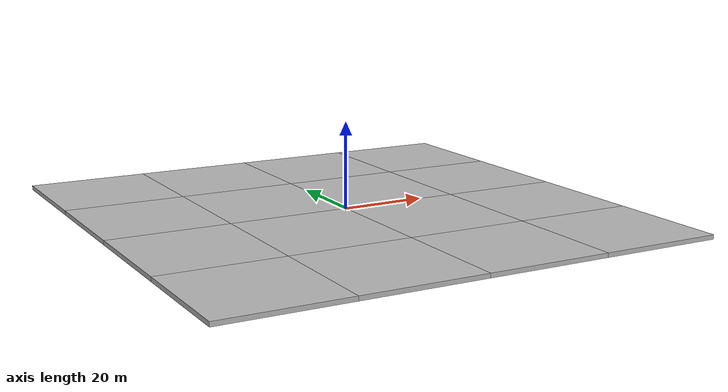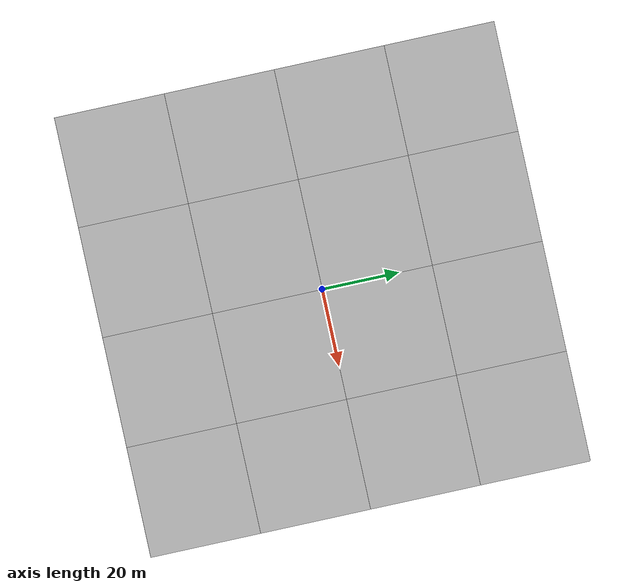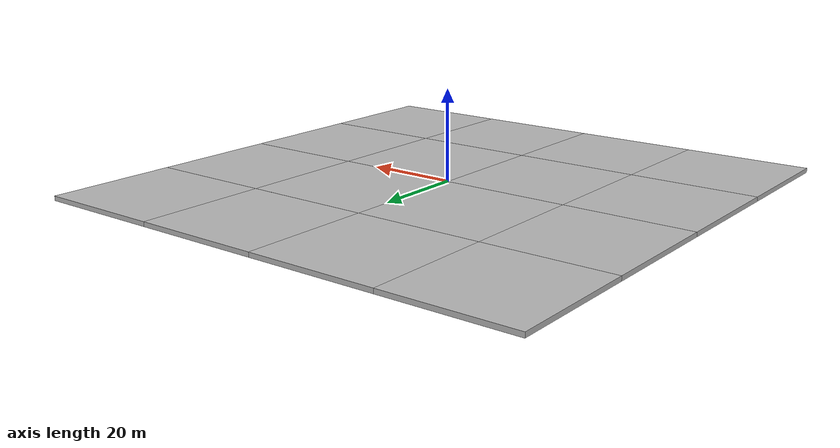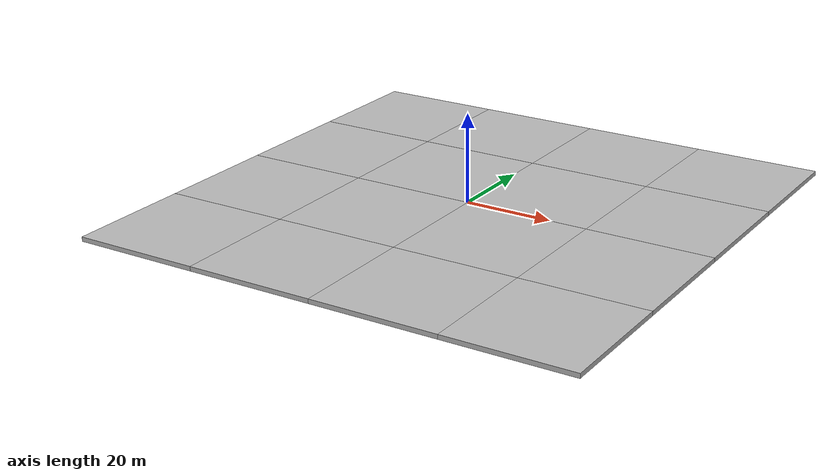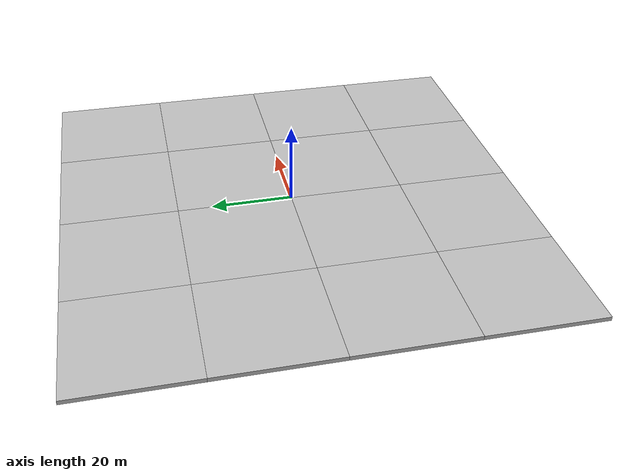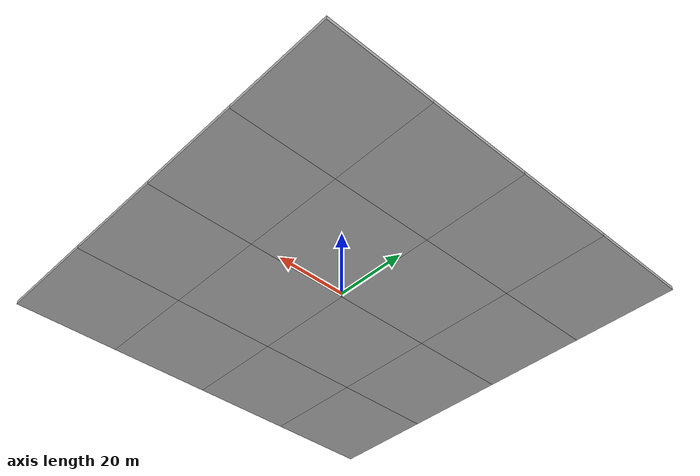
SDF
<sdf version='1.6'>
<model name='riseholme_satellite'>
  <static>true</static>
  <link name='link'>
    <collision name='collision'>
      <pose>0 0 -0.5 0 0 0</pose>
      <geometry>
        <box>
          <size>114.286 114.286 1</size>
        </box>
      </geometry>
    </collision>
    <visual name='visual0_0'>
      <pose>-42.8571 42.8571 -0.5 0 0 1.5708</pose>
      <geometry>
        <box>
          <size>28.5714 28.5714 1</size>
        </box>
      </geometry>
      <material>
        <script>
          <uri>model://riseholme_satellite/materials/scripts</uri>
          <uri>model://riseholme_satellite/materials/textures</uri>
          <name>riseholme_satellite/0_0</name>
        </script>
      </material>
    </visual>
    <visual name='visual0_1'>
      <pose>-14.2857 42.8571 -0.5 0 0 1.5708</pose>
      <geometry>
        <box>
          <size>28.5714 28.5714 1</size>
        </box>
      </geometry>
      <material>
        <script>
          <uri>model://riseholme_satellite/materials/scripts</uri>
          <uri>model://riseholme_satellite/materials/textures</uri>
          <name>riseholme_satellite/0_1</name>
        </script>
      </material>
    </visual>
    <visual name='visual0_2'>
      <pose>14.2857 42.8571 -0.5 0 0 1.5708</pose>
      <geometry>
        <box>
          <size>28.5714 28.5714 1</size>
        </box>
      </geometry>
      <material>
        <script>
          <uri>model://riseholme_satellite/materials/scripts</uri>
          <uri>model://riseholme_satellite/materials/textures</uri>
          <name>riseholme_satellite/0_2</name>
        </script>
      </material>
    </visual>
    <visual name='visual0_3'>
      <pose>42.8571 42.8571 -0.5 0 0 1.5708</pose>
      <geometry>
        <box>
          <size>28.5714 28.5714 1</size>
        </box>
      </geometry>
      <material>
        <script>
          <uri>model://riseholme_satellite/materials/scripts</uri>
          <uri>model://riseholme_satellite/materials/textures</uri>
          <name>riseholme_satellite/0_3</name>
        </script>
      </material>
    </visual>
    <visual name='visual1_0'>
      <pose>-42.8571 14.2857 -0.5 0 0 1.5708</pose>
      <geometry>
        <box>
          <size>28.5714 28.5714 1</size>
        </box>
      </geometry>
      <material>
        <script>
          <uri>model://riseholme_satellite/materials/scripts</uri>
          <uri>model://riseholme_satellite/materials/textures</uri>
          <name>riseholme_satellite/1_0</name>
        </script>
      </material>
    </visual>
    <visual name='visual1_1'>
      <pose>-14.2857 14.2857 -0.5 0 0 1.5708</pose>
      <geometry>
        <box>
          <size>28.5714 28.5714 1</size>
        </box>
      </geometry>
      <material>
        <script>
          <uri>model://riseholme_satellite/materials/scripts</uri>
          <uri>model://riseholme_satellite/materials/textures</uri>
          <name>riseholme_satellite/1_1</name>
        </script>
      </material>
    </visual>
    <visual name='visual1_2'>
      <pose>14.2857 14.2857 -0.5 0 0 1.5708</pose>
      <geometry>
        <box>
          <size>28.5714 28.5714 1</size>
        </box>
      </geometry>
      <material>
        <script>
          <uri>model://riseholme_satellite/materials/scripts</uri>
          <uri>model://riseholme_satellite/materials/textures</uri>
          <name>riseholme_satellite/1_2</name>
        </script>
      </material>
    </visual>
    <visual name='visual1_3'>
      <pose>42.8571 14.2857 -0.5 0 0 1.5708</pose>
      <geometry>
        <box>
          <size>28.5714 28.5714 1</size>
        </box>
      </geometry>
      <material>
        <script>
          <uri>model://riseholme_satellite/materials/scripts</uri>
          <uri>model://riseholme_satellite/materials/textures</uri>
          <name>riseholme_satellite/1_3</name>
        </script>
      </material>
    </visual>
    <visual name='visual2_0'>
      <pose>-42.8571 -14.2857 -0.5 0 0 1.5708</pose>
      <geometry>
        <box>
          <size>28.5714 28.5714 1</size>
        </box>
      </geometry>
      <material>
        <script>
          <uri>model://riseholme_satellite/materials/scripts</uri>
          <uri>model://riseholme_satellite/materials/textures</uri>
          <name>riseholme_satellite/2_0</name>
        </script>
      </material>
    </visual>
    <visual name='visual2_1'>
      <pose>-14.2857 -14.2857 -0.5 0 0 1.5708</pose>
      <geometry>
        <box>
          <size>28.5714 28.5714 1</size>
        </box>
      </geometry>
      <material>
        <script>
          <uri>model://riseholme_satellite/materials/scripts</uri>
          <uri>model://riseholme_satellite/materials/textures</uri>
          <name>riseholme_satellite/2_1</name>
        </script>
      </material>
    </visual>
    <visual name='visual2_2'>
      <pose>14.2857 -14.2857 -0.5 0 0 1.5708</pose>
      <geometry>
        <box>
          <size>28.5714 28.5714 1</size>
        </box>
      </geometry>
      <material>
        <script>
          <uri>model://riseholme_satellite/materials/scripts</uri>
          <uri>model://riseholme_satellite/materials/textures</uri>
          <name>riseholme_satellite/2_2</name>
        </script>
      </material>
    </visual>
    <visual name='visual2_3'>
      <pose>42.8571 -14.2857 -0.5 0 0 1.5708</pose>
      <geometry>
        <box>
          <size>28.5714 28.5714 1</size>
        </box>
      </geometry>
      <material>
        <script>
          <uri>model://riseholme_satellite/materials/scripts</uri>
          <uri>model://riseholme_satellite/materials/textures</uri>
          <name>riseholme_satellite/2_3</name>
        </script>
      </material>
    </visual>
    <visual name='visual3_0'>
      <pose>-42.8571 -42.8571 -0.5 0 0 1.5708</pose>
      <geometry>
        <box>
          <size>28.5714 28.5714 1</size>
        </box>
      </geometry>
      <material>
        <script>
          <uri>model://riseholme_satellite/materials/scripts</uri>
          <uri>model://riseholme_satellite/materials/textures</uri>
          <name>riseholme_satellite/3_0</name>
        </script>
      </material>
    </visual>
    <visual name='visual3_1'>
      <pose>-14.2857 -42.8571 -0.5 0 0 1.5708</pose>
      <geometry>
        <box>
          <size>28.5714 28.5714 1</size>
        </box>
      </geometry>
      <material>
        <script>
          <uri>model://riseholme_satellite/materials/scripts</uri>
          <uri>model://riseholme_satellite/materials/textures</uri>
          <name>riseholme_satellite/3_1</name>
        </script>
      </material>
    </visual>
    <visual name='visual3_2'>
      <pose>14.2857 -42.8571 -0.5 0 0 1.5708</pose>
      <geometry>
        <box>
          <size>28.5714 28.5714 1</size>
        </box>
      </geometry>
      <material>
        <script>
          <uri>model://riseholme_satellite/materials/scripts</uri>
          <uri>model://riseholme_satellite/materials/textures</uri>
          <name>riseholme_satellite/3_2</name>
        </script>
      </material>
    </visual>
    <visual name='visual3_3'>
      <pose>42.8571 -42.8571 -0.5 0 0 1.5708</pose>
      <geometry>
        <box>
          <size>28.5714 28.5714 1</size>
        </box>
      </geometry>
      <material>
        <script>
          <uri>model://riseholme_satellite/materials/scripts</uri>
          <uri>model://riseholme_satellite/materials/textures</uri>
          <name>riseholme_satellite/3_3</name>
        </script>
      </material>
    </visual>
  </link>
</model>
</sdf>
